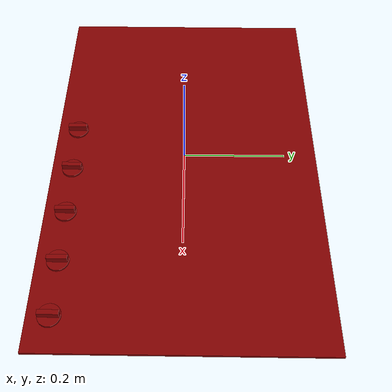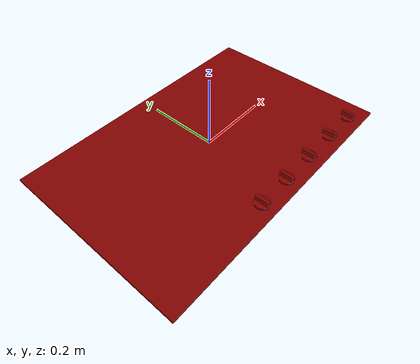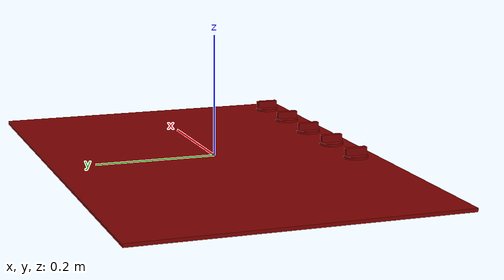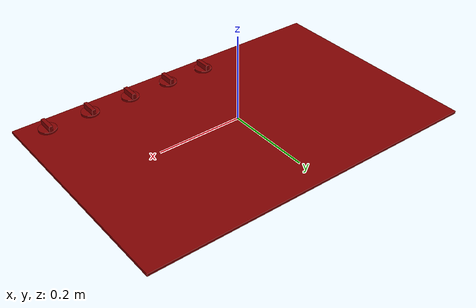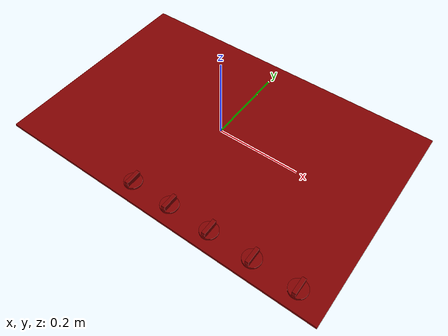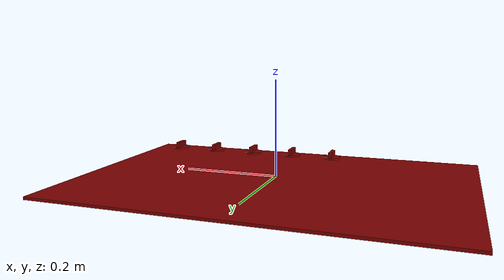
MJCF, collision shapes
<?xml version='1.0' encoding='UTF-8'?>
<mujoco model="model">
  <compiler angle="radian"/>
  <asset>
    <mesh file="visuals/knob_center.obj" name="knob_center_vis"/>
    <mesh file="visuals/knob_front_left.obj" name="knob_front_left_vis"/>
    <mesh file="visuals/knob_front_right.obj" name="knob_front_right_vis"/>
    <mesh file="visuals/knob_rear_left.obj" name="knob_rear_left_vis"/>
    <mesh file="visuals/knob_rear_right.obj" name="knob_rear_right_vis"/>
    <mesh file="visuals/Body001.obj" name="Body001_vis"/>
    <texture file="visuals/T_BC001.png" name="Body001_material" type="2d"/>
    <material name="Body001_material" rgba="1 1 1 1.0" texture="Body001_material" shininess="0.141421377658844" specular="0.7"/>
    <texture file="visuals/T_BC001.png" name="knob_center_material" type="2d"/>
    <material name="knob_center_material" rgba="1 1 1 1.0" texture="knob_center_material" shininess="0.141421377658844" specular="0.3103448502657381"/>
    <texture file="visuals/T_BC001.png" name="knob_front_left_material" type="2d"/>
    <material name="knob_front_left_material" rgba="1 1 1 1.0" texture="knob_front_left_material" shininess="0.141421377658844" specular="0.3103448502657381"/>
    <texture file="visuals/T_BC001.png" name="knob_front_right_material" type="2d"/>
    <material name="knob_front_right_material" rgba="1 1 1 1.0" texture="knob_front_right_material" shininess="0.141421377658844" specular="0.3103448502657381"/>
    <texture file="visuals/T_BC001.png" name="knob_rear_left_material" type="2d"/>
    <material name="knob_rear_left_material" rgba="1 1 1 1.0" texture="knob_rear_left_material" shininess="0.141421377658844" specular="0.3103448502657381"/>
    <texture file="visuals/T_BC001.png" name="knob_rear_right_material" type="2d"/>
    <material name="knob_rear_right_material" rgba="1 1 1 1.0" texture="knob_rear_right_material" shininess="0.141421377658844" specular="0.3103448502657381"/>
  </asset>
  <default>
    <default class="visual">
      <geom conaffinity="0" contype="0" group="1" type="mesh"/>
    </default>
    <default class="collision">
      <geom group="0" rgba="0.5 0 0 0.5"/>
    </default>
    <default class="spawn">
      <geom group="0" rgba="1 1 1 0.5" contype="0" conaffinity="0"/>
      <site group="0" rgba="1 1 1 0.5"/>
    </default>
    <default class="region">
      <geom group="1" conaffinity="0" contype="0" rgba="0 1 0 0"/>
    </default>
  </default>
  <worldbody>
    <body>
      <body name="object">
        <site type="cylinder" rgba="0.5 0 0 0.5" size="0.10694453865289688 4.999999873689376e-05" pos="0.000776 0.021673 -0.007034" name="burner_on_center"/>
        <site type="cylinder" rgba="0.5 0 0 0.5" size="0.08278307318687439 4.999999873689376e-05" pos="-0.247471 0.135732 -0.007034" name="burner_on_rear_left"/>
        <site type="cylinder" rgba="0.5 0 0 0.5" size="0.09058569371700287 4.999999873689376e-05" pos="-0.253341 -0.118385 -0.007034" name="burner_on_front_left"/>
        <site type="cylinder" rgba="0.5 0 0 0.5" size="0.07414819300174713 4.999999873689376e-05" pos="0.225541 0.135732 -0.007034" name="burner_on_rear_right"/>
        <site type="cylinder" rgba="0.5 0 0 0.5" size="0.09058569371700287 4.999999873689376e-05" pos="0.254055 -0.080645 -0.007034" name="burner_on_front_right"/>
        <geom mesh="Body001_vis" type="mesh" solimp="0.998 0.998 0.001" solref="0.001 1" density="100" friction="0.95 0.3 0.1" class="visual" material="Body001_material"/>
        <geom class="collision" type="box" pos="0.000540 0.000859 -0.009544" size="0.40364792943000793 0.26560720801353455 0.0029983187559992075" quat="1.0 0.0 0.0 0.0"/>
        <body name="knob_center">
          <joint axis="0.0 0.0 1.0" pos="0.135051 -0.223727 0.001483" limited="true" name="knob_center_joint" range="0.0 3.141592653589793" type="hinge" damping="0.05" armature="0.001"/>
          <geom mesh="knob_center_vis" type="mesh" solimp="0.998 0.998 0.001" solref="0.001 1" density="100" friction="0.95 0.3 0.1" class="visual" material="knob_center_material"/>
          <geom class="collision" type="box" pos="0.135018 -0.223748 0.005166" size="0.004347840789705515 0.018760010600090027 0.006951689254492521" quat="1.0 0.0 0.0 0.0"/>
          <geom class="collision" type="cylinder" pos="0.135126 -0.223760 -0.003154" size="0.02065761387348175 0.0023114990908652544" quat="1.0 0.0 0.0 0.0"/>
        </body>
        <body name="knob_front_left">
          <joint axis="0.0 0.0 1.0" pos="-0.068374 -0.223727 0.001483" limited="true" name="knob_front_left_joint" range="0.0 3.141592653589793" type="hinge" damping="0.05" armature="0.001"/>
          <geom mesh="knob_front_left_vis" type="mesh" solimp="0.998 0.998 0.001" solref="0.001 1" density="100" friction="0.95 0.3 0.1" class="visual" material="knob_front_left_material"/>
          <geom class="collision" type="box" pos="-0.068532 -0.223748 0.005166" size="0.004347840789705515 0.018760010600090027 0.006951689254492521" quat="1.0 0.0 0.0 0.0"/>
          <geom class="collision" type="cylinder" pos="-0.068181 -0.223760 -0.003154" size="0.02065761387348175 0.0023114990908652544" quat="1.0 0.0 0.0 0.0"/>
        </body>
        <body name="knob_front_right">
          <joint axis="0.0 0.0 1.0" pos="0.341185 -0.223727 0.001483" limited="true" name="knob_front_right_joint" range="0.0 3.141592653589793" type="hinge" damping="0.05" armature="0.001"/>
          <geom mesh="knob_front_right_vis" type="mesh" solimp="0.998 0.998 0.001" solref="0.001 1" density="100" friction="0.95 0.3 0.1" class="visual" material="knob_front_right_material"/>
          <geom class="collision" type="box" pos="0.341057 -0.223748 0.005166" size="0.004347840789705515 0.018760010600090027 0.006951689254492521" quat="1.0 0.0 0.0 0.0"/>
          <geom class="collision" type="cylinder" pos="0.340947 -0.223760 -0.003154" size="0.02065761387348175 0.0023114990908652544" quat="1.0 0.0 0.0 0.0"/>
        </body>
        <body name="knob_rear_left">
          <joint axis="0.0 0.0 1.0" pos="0.032986 -0.223727 0.001483" limited="true" name="knob_rear_left_joint" range="0.0 3.141592653589793" type="hinge" damping="0.05" armature="0.001"/>
          <geom mesh="knob_rear_left_vis" type="mesh" solimp="0.998 0.998 0.001" solref="0.001 1" density="100" friction="0.95 0.3 0.1" class="visual" material="knob_rear_left_material"/>
          <geom class="collision" type="box" pos="0.032748 -0.223748 0.005166" size="0.004347840789705515 0.018760010600090027 0.006951689254492521" quat="1.0 0.0 0.0 0.0"/>
          <geom class="collision" type="cylinder" pos="0.032631 -0.223760 -0.003154" size="0.02065761387348175 0.0023114990908652544" quat="1.0 0.0 0.0 0.0"/>
        </body>
        <body name="knob_rear_right">
          <joint axis="0.0 0.0 1.0" pos="0.238163 -0.223727 0.001483" limited="true" name="knob_rear_right_joint" range="0.0 3.141592653589793" type="hinge" damping="0.05" armature="0.001"/>
          <geom mesh="knob_rear_right_vis" type="mesh" solimp="0.998 0.998 0.001" solref="0.001 1" density="100" friction="0.95 0.3 0.1" class="visual" material="knob_rear_right_material"/>
          <geom class="collision" type="box" pos="0.237904 -0.223748 0.005166" size="0.004347840789705515 0.018760010600090027 0.006951689254492521" quat="1.0 0.0 0.0 0.0"/>
          <geom class="collision" type="cylinder" pos="0.238050 -0.223760 -0.003154" size="0.02065761387348175 0.0023114990908652544" quat="1.0 0.0 0.0 0.0"/>
        </body>
        <geom class="region" name="reg_main" type="box" pos="0.00016399999999999748 -4.399999999998849e-05 -0.009276" size="0.40454 0.267084 0.002116"/>
      </body>
    </body>
  </worldbody>
  <actuator>
    <motor name="knob_center_joint_actuator" joint="knob_center_joint" gear="10"/>
    <motor name="knob_front_left_joint_actuator" joint="knob_front_left_joint" gear="10"/>
    <motor name="knob_front_right_joint_actuator" joint="knob_front_right_joint" gear="10"/>
    <motor name="knob_rear_left_joint_actuator" joint="knob_rear_left_joint" gear="10"/>
    <motor name="knob_rear_right_joint_actuator" joint="knob_rear_right_joint" gear="10"/>
  </actuator>
</mujoco>
